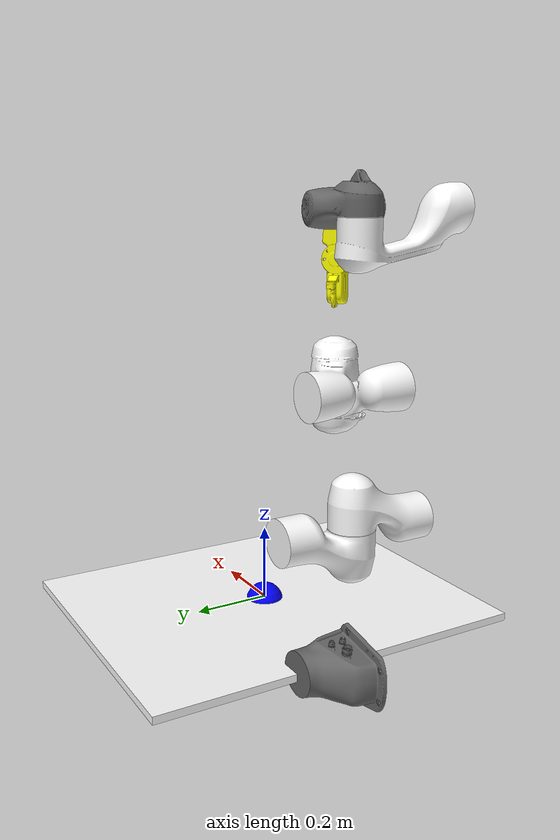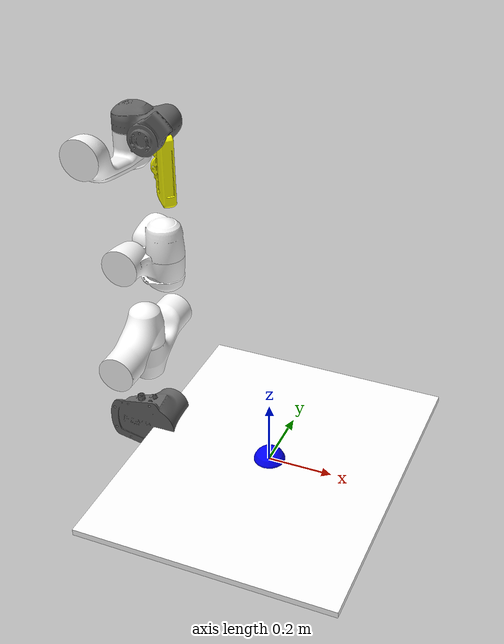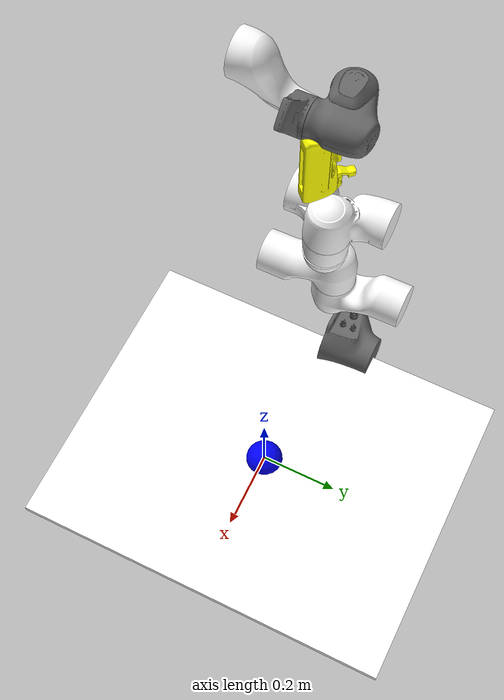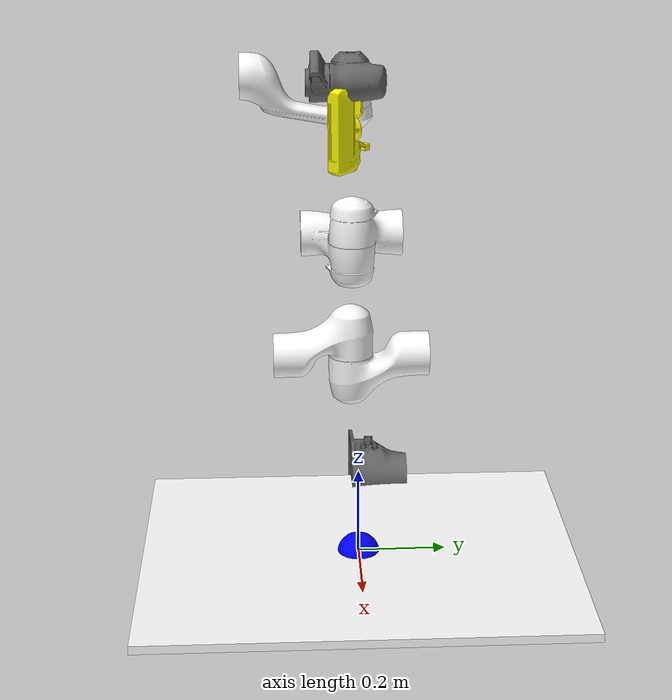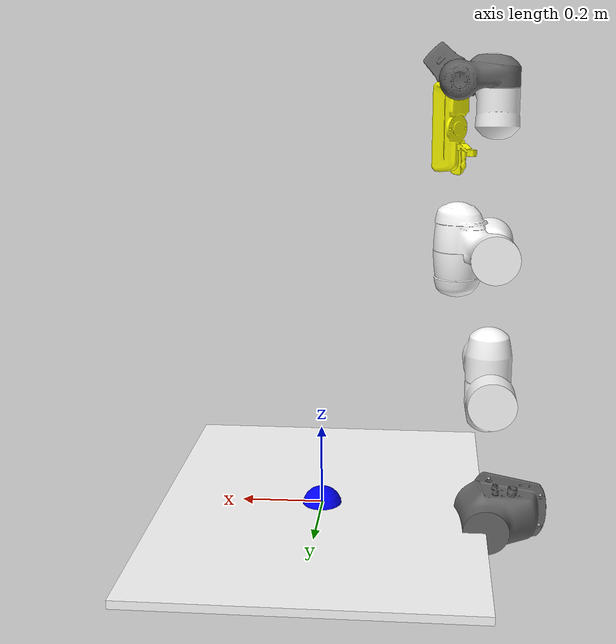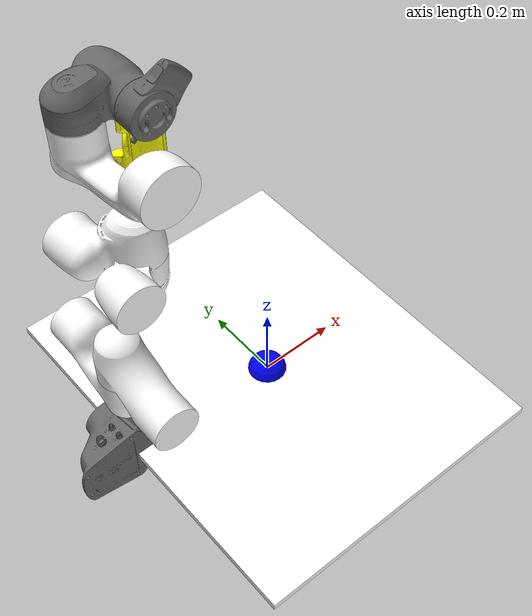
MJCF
<mujoco model="panda">
    <compiler angle="radian"/>
    <option timestep="0.001"  gravity= "0 0 -9.8 " integrator="Euler" />
    <size njmax="5000" nconmax="1000" />

    <visual>
        <map fogstart="3" fogend="5" znear="0.05"/>
        <quality shadowsize="2048"/>
        <scale framelength="0.1"
               framewidth="0.005"
               contactwidth="0.1"
               contactheight="0.005"
               forcewidth="0.01"
               />
    </visual>

    <asset>
        <mesh name="link0" file="link0.stl" />
        <mesh name="link1" file="link1.stl" />
        <mesh name="link2" file="link2.stl" />
        <mesh name="link3" file="link3.stl" />
        <mesh name="link4" file="link4.stl" />
        <mesh name="link5" file="link5.stl" />
        <mesh name="link6" file="link6.stl" />
        <mesh name="link7" file="link7.stl" />
        <mesh name="hand" file="hand.stl" />
        <mesh name="finger" file="finger.stl" />
    </asset>

    <!--Contacts-->
    <contact>
        <exclude body1="panda_link0" body2="panda_link1"/>
        <exclude body1="panda_link1" body2="panda_link2"/>
        <exclude body1="panda_link2" body2="panda_link3"/>
        <exclude body1="panda_link3" body2="panda_link4"/>
        <exclude body1="panda_link4" body2="panda_link5"/>
        <exclude body1="panda_link5" body2="panda_link6"/>
        <exclude body1="panda_link6" body2="panda_link7"/>
    </contact>

    <worldbody>
          <!-- Camera -->
      	 <camera name="camera_topdown" mode="fixed" zaxis="0 0 1" pos="0 0 1.5" />
      	 <camera name="camera_side" mode="fixed" zaxis="0 1 0" pos="0 1.7 0.4" />
      	 <camera name="camera_front" mode="fixed" xyaxes="0 1 0 0 0 1" pos="2.4 0 0.5" />
        <geom rgba="1 1 1 1" name="table" type="box" pos="0 0 -0.01" size="0.4 0.5 0.01"/>

        <body name="panda_link0" pos="-0.4 0 0.0">
            <geom type="mesh" mesh="link0" rgba="0.4 0.4 0.4 1" />
                <body name="panda_link1" pos="0.0 0 0.333">
                    <inertial pos="1.1399e-05 -0.0312655 -0.0693733" quat="0.98466 0.174481 -0.000101815 0.000347662" mass="2.77281" diaginertia="0.0164224 0.0153969 0.00546286" />
                    <joint name="panda_joint1" pos="0 0 0" axis="0 0 1" limited="true" range="-2.8973 2.8973" type="hinge"/>
                    <geom type="mesh" mesh="link1" rgba="1 1 1 1"/>
                    <body name="panda_link2" pos="0 0 0" quat="0.707107 -0.707107 0 0">
                        <inertial pos="-1.31766e-05 -0.0703216 0.0311782" quat="0.57484 0.818266 -6.05764e-05 -6.61626e-05" mass="2.7996" diaginertia="0.016787 0.0157415 0.00553027" />
                        <joint name="panda_joint2" pos="0 0 0" axis="0 0 1" limited="true" range="-1.7628 1.7628" type="hinge"/>
                        <geom type="mesh" mesh="link2" rgba="1 1 1 1"/>
                        <body name="panda_link3" pos="0 -0.316 0" quat="0.707107 0.707107 0 0">
                            <inertial pos="0.0443483 0.0249283 -0.03813" quat="0.0615263 0.349824 0.234291 0.904956" mass="2.14603" diaginertia="0.00915257 0.00896477 0.00384742" />
                            <joint name="panda_joint3" pos="0 0 0" axis="0 0 1" limited="true" range="-2.8973 2.8973" type="hinge"/>
                            <geom type="mesh" mesh="link3" rgba="1 1 1 1"/>
                            <body name="panda_link4" pos="0.0825 0 0" quat="0.707107 0.707107 0 0">
                                <inertial pos="-0.0385503 0.0395256 0.0247162" quat="0.813566 0.465041 0.309792 0.160858" mass="2.18807" diaginertia="0.00946899 0.00928491 0.00396694" />
                                <joint name="panda_joint4" pos="0 0 0" axis="0 0 1" limited="true" range="-3.0718 -0.0698" type="hinge"/>
                                <geom type="mesh" mesh="link4" rgba="1 1 1 1"/>
                                <body name="panda_link5" pos="-0.0825 0.384 0" quat="0.707107 -0.707107 0 0">
                                    <inertial pos="-6.36776e-05 0.0384124 -0.10997" quat="0.990767 -0.135571 0.000963106 0.000694406" mass="3.19545" diaginertia="0.0278873 0.0268823 0.00569569" />
                                    <joint name="panda_joint5" pos="0 0 0" axis="0 0 1" limited="true" range="-2.8973 2.8973" type="hinge"/>
                                    <geom type="mesh" mesh="link5" rgba="1 1 1 1"/>
                                    <body name="panda_link6" pos="0 0 0" quat="0.707107 0.707107 0 0">
                                        <inertial pos="0.0510023 0.00693267 0.00616899" quat="-0.0460841 0.754362 0.044494 0.653325" mass="1.35761" diaginertia="0.00412168 0.0033698 0.00213304" />
                                        <joint name="panda_joint6" pos="0 0 0" axis="0 0 1" limited="true" range="-0.0175 3.7525" type="hinge"/>
                                        <geom type="mesh" mesh="link6" rgba="0.4 0.4 0.4 1"/>
                                        <body name="panda_link7" pos="0.088 0 0" quat="0.707107 0.707107 0 0">
                                            <inertial pos="0.00370456 0.00370629 0.111054" quat="0.255962 0.284553 0.687036 0.617653" mass="1.08813" diaginertia="0.00355525 0.00277167 0.00141387" />
                                            <joint name="panda_joint7" pos="0 0 0" axis="0 0 1" limited="true" range="-2.8973 2.8973" type="hinge"/>
                                            <geom type="mesh" mesh="link7" rgba="0.4 0.4 0.4 1"/>
                                            <geom pos="0 0 0.107" quat="0.92388 0 0 -0.382683" type="mesh" mesh="hand" rgba="1 1 0 1"/>
                                            <body name="panda_leftfinger" pos="0 0 0.1654" quat="0.92388 0 0 -0.382683">
                                                <inertial pos="-2.42335e-05 0.0119585 0.0237816" quat="0.996177 0.0868636 -2.79333e-05 -0.00926642" mass="0.0218754" diaginertia="5.69661e-06 5.56035e-06 1.55183e-06" />
                                                <joint name="panda_finger_joint1" pos="0 0 0" axis="0 1 0" type="slide" limited="true" range="0 0.04" />
                                                <geom type="mesh" mesh="finger" rgba="1 1 0 1"/>
                                            </body>
                                            <body name="panda_rightfinger" pos="0 0 0.1654" quat="0.92388 0 0 -0.382683">
                                                <inertial pos="2.42335e-05 -0.0119585 0.0237816" quat="0.00926642 2.79333e-05 0.0868636 0.996177" mass="0.0218754" diaginertia="5.69661e-06 5.56035e-06 1.55183e-06" />
                                                <joint name="panda_finger_joint2" pos="0 0 0" axis="0 -1 0" type="slide" limited="true" range="0 0.04" />
                                                <geom quat="0 0 0 1" type="mesh" mesh="finger" rgba="1 1 0 1"/>
                                            </body>
                                        </body>
                                    </body>
                                </body>
                            </body>
                        </body>
                    </body>
                </body>
            </body>

             <body name="goal" pos="0.0 0.0 -0.01">
                <geom rgba="0 0 1 1" type="sphere" size="0.05 0.001 0.1" density='0.00001'/>
                <joint name="goal_slidex" type="slide" pos="0 0 -0.01" axis="1 0 0" range="-10.3213 10.3" damping="1.0"/>
                <joint name="goal_slidey" type="slide" pos="0 0 -0.01" axis="0 1 0" range="-10.3213 10.3" damping="1.0"/>
                <joint name="goal_slidez" type="slide" pos="0 0 -0.01" axis="0 0 1" range="-10.3213 10.3" damping="1.0"/>
            </body>

            <!-- Target -->

    </worldbody>
    <actuator>
        <!-- velocity control -->

        <!--  position control  -->
        <position joint="panda_joint1" ctrllimited="true" ctrlrange="-3.14159 3.14159" kp="500"/>
        <position joint="panda_joint2" ctrllimited="true" ctrlrange="-3.14159 3.14159" kp="500"/>
        <position joint="panda_joint3" ctrllimited="true" ctrlrange="-3.14159 3.14159" kp="500"/>
        <position joint="panda_joint4" ctrllimited="true" ctrlrange="-3.14159 3.14159" kp="100"/>
        <position joint="panda_joint5" ctrllimited="true" ctrlrange="-3.14159 3.14159" kp="100"/>
        <position joint="panda_joint6" ctrllimited="true" ctrlrange="-3.14159 3.14159" kp="100"/>
        <position joint="panda_joint7" ctrllimited="true" ctrlrange="-3.14159 3.14159" kp="100"/>
        <position joint="panda_finger_joint1" ctrlrange="-1.0 1.0" ctrllimited="true" kp="100"/>
        <position joint="panda_finger_joint2" ctrlrange="-1.0 1.0" ctrllimited="true" kp="100"/>

    </actuator>

</mujoco>
